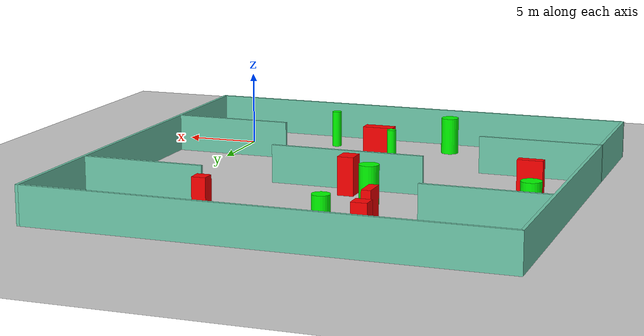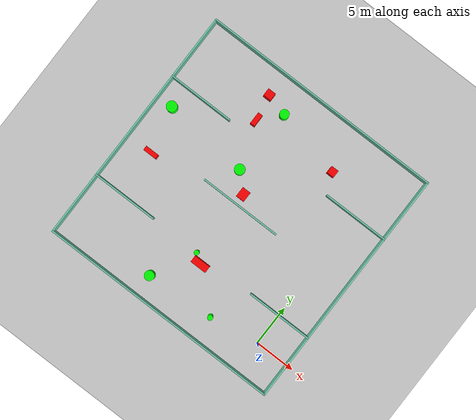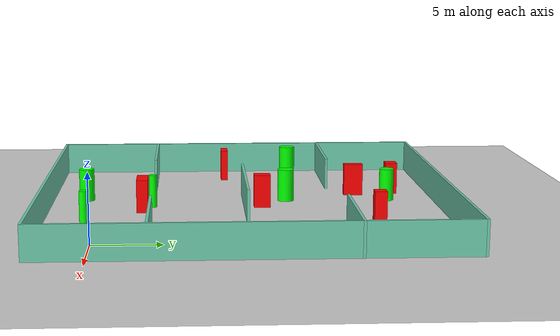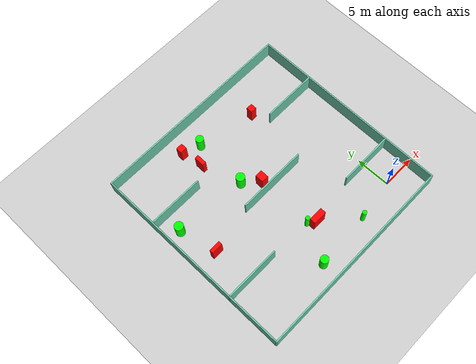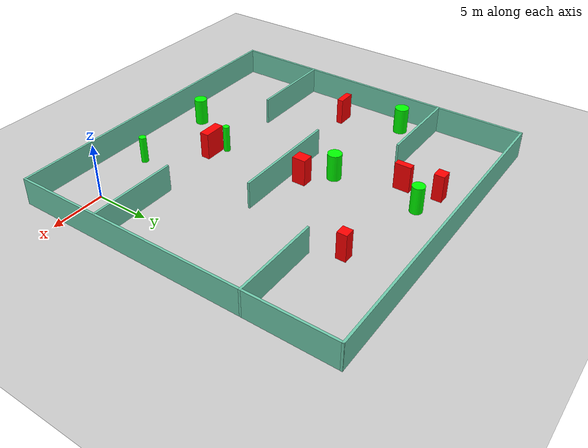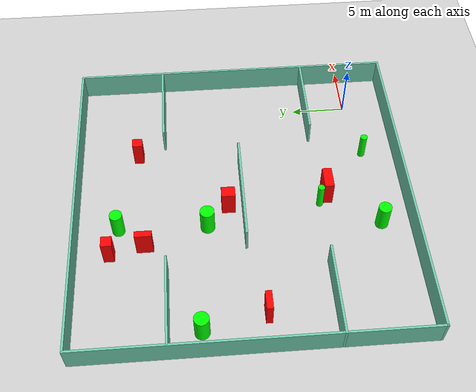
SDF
<sdf version="1.7">
 <world name="default">
  <light name="sun" type="directional">
   <pose>0 0 10 0 -0 0</pose>
   <diffuse>0.8 0.8 0.8 1</diffuse>
   <specular>0.2 0.2 0.2 1</specular>
   <attenuation>
    <range>1000</range>
    <constant>0.9</constant>
    <linear>0.01</linear>
    <quadratic>0.001</quadratic>
   </attenuation>
   <direction>-0.5 0.1 -0.9</direction>
   <spot><inner_angle>0</inner_angle><outer_angle>0</outer_angle><falloff>0</falloff></spot>
  </light>
  <model name="ground_plane">
   <static>1</static>
   <link name="link">
    <collision name="collision">
     <geometry><plane><normal>0 0 1</normal><size>100 100</size></plane></geometry>
     <surface>
      <contact><collide_bitmask>65535</collide_bitmask></contact>
      <friction><ode><mu>100</mu><mu2>50</mu2></ode></friction>
     </surface>
    </collision>
    <visual name="visual">
     <cast_shadows>0</cast_shadows>
     <geometry><plane><normal>0 0 1</normal><size>100 100</size></plane></geometry>
     <material>
      <script><uri>file://media/materials/scripts/gazebo.material</uri><name>Gazebo/Grey</name></script>
     </material>
    </visual>
   </link>
  </model>
  <gravity>0 0 -9.8</gravity>
  <magnetic_field>6e-06 2.3e-05 -4.2e-05</magnetic_field>
  <atmosphere type="adiabatic"/>
  <physics type="ode">
   <max_step_size>0.001</max_step_size>
   <real_time_factor>1</real_time_factor>
   <real_time_update_rate>1000</real_time_update_rate>
  </physics>
  <scene><ambient>0.4 0.4 0.4 1</ambient><background>0.7 0.7 0.7 1</background><shadows>1</shadows></scene>
  <spherical_coordinates>
   <surface_model>EARTH_WGS84</surface_model>
   <latitude_deg>0</latitude_deg>
   <longitude_deg>0</longitude_deg>
   <elevation>0</elevation>
   <heading_deg>0</heading_deg>
  </spherical_coordinates>
  <model name="my_base_walls">
   <link name="Wall_10">
    <collision name="Wall_10_Collision">
     <geometry><box><size>8.2 0.2 2.5</size></box></geometry>
     <pose>0 0 1.25 0 -0 0</pose>
    </collision>
    <visual name="Wall_10_Visual">
     <pose>0 0 1.25 0 -0 0</pose>
     <geometry><box><size>8.2 0.2 2.5</size></box></geometry>
     <material>
      <script><uri>file://media/materials/scripts/gazebo.material</uri><name>Gazebo/Grey</name></script>
      <ambient>0.435294 0.796078 0.67451 1</ambient>
     </material>
     <meta><layer>0</layer></meta>
    </visual>
    <pose>-11 -7 0 0 -0 0</pose>
   </link>
   <link name="Wall_12">
    <collision name="Wall_12_Collision">
     <geometry><box><size>8.2 0.2 2.5</size></box></geometry>
     <pose>0 0 1.25 0 -0 0</pose>
    </collision>
    <visual name="Wall_12_Visual">
     <pose>0 0 1.25 0 -0 0</pose>
     <geometry><box><size>8.2 0.2 2.5</size></box></geometry>
     <material>
      <script><uri>file://media/materials/scripts/gazebo.material</uri><name>Gazebo/Grey</name></script>
      <ambient>0.435294 0.796078 0.67451 1</ambient>
     </material>
     <meta><layer>0</layer></meta>
    </visual>
    <pose>-11 7 0 0 -0 0</pose>
   </link>
   <link name="Wall_14">
    <collision name="Wall_14_Collision">
     <geometry><box><size>8.2 0.2 2.5</size></box></geometry>
     <pose>0 0 1.25 0 -0 0</pose>
    </collision>
    <visual name="Wall_14_Visual">
     <pose>0 0 1.25 0 -0 0</pose>
     <geometry><box><size>8.2 0.2 2.5</size></box></geometry>
     <material>
      <script><uri>file://media/materials/scripts/gazebo.material</uri><name>Gazebo/Grey</name></script>
      <ambient>0.435294 0.796078 0.67451 1</ambient>
     </material>
     <meta><layer>0</layer></meta>
    </visual>
    <pose>11 7 0 0 -0 3.14159</pose>
   </link>
   <link name="Wall_16">
    <collision name="Wall_16_Collision">
     <geometry><box><size>10.2 0.2 2.5</size></box></geometry>
     <pose>0 0 1.25 0 -0 0</pose>
    </collision>
    <visual name="Wall_16_Visual">
     <pose>0 0 1.25 0 -0 0</pose>
     <geometry><box><size>10.2 0.2 2.5</size></box></geometry>
     <material>
      <script><uri>file://media/materials/scripts/gazebo.material</uri><name>Gazebo/Grey</name></script>
      <ambient>0.435294 0.796078 0.67451 1</ambient>
     </material>
     <meta><layer>0</layer></meta>
    </visual>
    <pose>0 0 0 0 -0 3.14159</pose>
   </link>
   <link name="Wall_2">
    <collision name="Wall_2_Collision">
     <geometry><box><size>30.2 0.2 2.5</size></box></geometry>
     <pose>0 0 1.25 0 -0 0</pose>
    </collision>
    <visual name="Wall_2_Visual">
     <pose>0 0 1.25 0 -0 0</pose>
     <geometry><box><size>30.2 0.2 2.5</size></box></geometry>
     <material>
      <script><uri>file://media/materials/scripts/gazebo.material</uri><name>Gazebo/Grey</name></script>
      <ambient>0.435294 0.796078 0.67451 1</ambient>
     </material>
     <meta><layer>0</layer></meta>
    </visual>
    <pose>0 -15 0 0 -0 3.14159</pose>
   </link>
   <link name="Wall_3">
    <collision name="Wall_3_Collision">
     <geometry><box><size>30.2 0.2 2.5</size></box></geometry>
     <pose>0 0 1.25 0 -0 0</pose>
    </collision>
    <visual name="Wall_3_Visual">
     <pose>0 0 1.25 0 -0 0</pose>
     <geometry><box><size>30.2 0.2 2.5</size></box></geometry>
     <material>
      <script><uri>file://media/materials/scripts/gazebo.material</uri><name>Gazebo/Grey</name></script>
      <ambient>0.435294 0.796078 0.67451 1</ambient>
     </material>
     <meta><layer>0</layer></meta>
    </visual>
    <pose>-15 0 0 0 -0 1.5708</pose>
   </link>
   <link name="Wall_4">
    <collision name="Wall_4_Collision">
     <geometry><box><size>30.2 0.2 2.5</size></box></geometry>
     <pose>0 0 1.25 0 -0 0</pose>
    </collision>
    <visual name="Wall_4_Visual">
     <pose>0 0 1.25 0 -0 0</pose>
     <geometry><box><size>30.2 0.2 2.5</size></box></geometry>
     <material>
      <script><uri>file://media/materials/scripts/gazebo.material</uri><name>Gazebo/Grey</name></script>
      <ambient>0.435294 0.796078 0.67451 1</ambient>
     </material>
     <meta><layer>0</layer></meta>
    </visual>
    <pose>0 15 0 0 -0 0</pose>
   </link>
   <link name="Wall_6">
    <collision name="Wall_6_Collision">
     <geometry><box><size>30.2 0.2 2.5</size></box></geometry>
     <pose>0 0 1.25 0 -0 0</pose>
    </collision>
    <visual name="Wall_6_Visual">
     <pose>0 0 1.25 0 -0 0</pose>
     <geometry><box><size>30.2 0.2 2.5</size></box></geometry>
     <material>
      <script><uri>file://media/materials/scripts/gazebo.material</uri><name>Gazebo/Grey</name></script>
      <ambient>0.435294 0.796078 0.67451 1</ambient>
     </material>
     <meta><layer>0</layer></meta>
    </visual>
    <pose>15 0 0 0 -0 1.5708</pose>
   </link>
   <link name="Wall_8">
    <collision name="Wall_8_Collision">
     <geometry><box><size>8.2 0.2 2.5</size></box></geometry>
     <pose>0 0 1.25 0 -0 0</pose>
    </collision>
    <visual name="Wall_8_Visual">
     <pose>0 0 1.25 0 -0 0</pose>
     <geometry><box><size>8.2 0.2 2.5</size></box></geometry>
     <material>
      <script><uri>file://media/materials/scripts/gazebo.material</uri><name>Gazebo/Grey</name></script>
      <ambient>0.435294 0.796078 0.67451 1</ambient>
     </material>
     <meta><layer>0</layer></meta>
    </visual>
    <pose>11 -7 0 0 -0 3.14159</pose>
   </link>
   <static>1</static>
   <pose>-11 11 0 0 -0 0</pose>
  </model>
  <model name="cylinder1">
   <static>1</static>
   <link name="link">
    <inertial>
     <mass>1</mass>
     <inertia><ixx>0.5</ixx><ixy>0</ixy><ixz>0</ixz><iyy>0.5</iyy><iyz>0</iyz><izz>1</izz></inertia>
    </inertial>
    <collision name="collision">
     <geometry><cylinder><radius>0.32413578820433453</radius><length>2.5</length></cylinder></geometry>
    </collision>
    <visual name="visual">
     <geometry><cylinder><radius>0.32413578820433453</radius><length>2.5</length></cylinder></geometry>
     <material>
      <ambient>0 1 0 1</ambient>
      <diffuse>0 1 0 1</diffuse>
      <specular>0.1 0.1 0.1 1</specular>
      <emissive>0 0 0 0</emissive>
     </material>
    </visual>
   </link>
   <pose>-6.080685786428061 -0.8819912131358087 1.25 0 0 0</pose>
  </model>
  <model name="cylinder2">
   <static>1</static>
   <link name="link">
    <inertial>
     <mass>1</mass>
     <inertia><ixx>0.5</ixx><ixy>0</ixy><ixz>0</ixz><iyy>0.5</iyy><iyz>0</iyz><izz>1</izz></inertia>
    </inertial>
    <collision name="collision">
     <geometry><cylinder><radius>0.6469020158469632</radius><length>2.5</length></cylinder></geometry>
    </collision>
    <visual name="visual">
     <geometry><cylinder><radius>0.6469020158469632</radius><length>2.5</length></cylinder></geometry>
     <material>
      <ambient>0 1 0 1</ambient>
      <diffuse>0 1 0 1</diffuse>
      <specular>0.1 0.1 0.1 1</specular>
      <emissive>0 0 0 0</emissive>
     </material>
    </visual>
   </link>
   <pose>-23.987944436922348 15.234672644844721 1.25 0 0 0</pose>
  </model>
  <model name="cylinder3">
   <static>1</static>
   <link name="link">
    <inertial>
     <mass>1</mass>
     <inertia><ixx>0.5</ixx><ixy>0</ixy><ixz>0</ixz><iyy>0.5</iyy><iyz>0</iyz><izz>1</izz></inertia>
    </inertial>
    <collision name="collision">
     <geometry><cylinder><radius>0.5650479582585851</radius><length>2.5</length></cylinder></geometry>
    </collision>
    <visual name="visual">
     <geometry><cylinder><radius>0.5650479582585851</radius><length>2.5</length></cylinder></geometry>
     <material>
      <ambient>0 1 0 1</ambient>
      <diffuse>0 1 0 1</diffuse>
      <specular>0.1 0.1 0.1 1</specular>
      <emissive>0 0 0 0</emissive>
     </material>
    </visual>
   </link>
   <pose>-13.44203260713629 22.270271892120064 1.25 0 0 0</pose>
  </model>
  <model name="cylinder4">
   <static>1</static>
   <link name="link">
    <inertial>
     <mass>1</mass>
     <inertia><ixx>0.5</ixx><ixy>0</ixy><ixz>0</ixz><iyy>0.5</iyy><iyz>0</iyz><izz>1</izz></inertia>
    </inertial>
    <collision name="collision">
     <geometry><cylinder><radius>0.5906888437726041</radius><length>2.5</length></cylinder></geometry>
    </collision>
    <visual name="visual">
     <geometry><cylinder><radius>0.5906888437726041</radius><length>2.5</length></cylinder></geometry>
     <material>
      <ambient>0 1 0 1</ambient>
      <diffuse>0 1 0 1</diffuse>
      <specular>0.1 0.1 0.1 1</specular>
      <emissive>0 0 0 0</emissive>
     </material>
    </visual>
   </link>
   <pose>-14.35817600295312 -1.3238190979024638 1.25 0 0 0</pose>
  </model>
  <model name="cylinder5">
   <static>1</static>
   <link name="link">
    <inertial>
     <mass>1</mass>
     <inertia><ixx>0.5</ixx><ixy>0</ixy><ixz>0</ixz><iyy>0.5</iyy><iyz>0</iyz><izz>1</izz></inertia>
    </inertial>
    <collision name="collision">
     <geometry><cylinder><radius>0.6405446793423184</radius><length>2.5</length></cylinder></geometry>
    </collision>
    <visual name="visual">
     <geometry><cylinder><radius>0.6405446793423184</radius><length>2.5</length></cylinder></geometry>
     <material>
      <ambient>0 1 0 1</ambient>
      <diffuse>0 1 0 1</diffuse>
      <specular>0.1 0.1 0.1 1</specular>
      <emissive>0 0 0 0</emissive>
     </material>
    </visual>
   </link>
   <pose>-13.627866321513041 14.312555599050256 1.25 0 0 0</pose>
  </model>
  <model name="cylinder6">
   <static>1</static>
   <link name="link">
    <inertial>
     <mass>1</mass>
     <inertia><ixx>0.5</ixx><ixy>0</ixy><ixz>0</ixz><iyy>0.5</iyy><iyz>0</iyz><izz>1</izz></inertia>
    </inertial>
    <collision name="collision">
     <geometry><cylinder><radius>0.301185818602902</radius><length>2.5</length></cylinder></geometry>
    </collision>
    <visual name="visual">
     <geometry><cylinder><radius>0.301185818602902</radius><length>2.5</length></cylinder></geometry>
     <material>
      <ambient>0 1 0 1</ambient>
      <diffuse>0 1 0 1</diffuse>
      <specular>0.1 0.1 0.1 1</specular>
      <emissive>0 0 0 0</emissive>
     </material>
    </visual>
   </link>
   <pose>-11.742629939540079 3.951003853853809 1.25 0 0 0</pose>
  </model>
  <model name="box1">
   <static>1</static>
   <link name="link">
    <inertial>
     <mass>1</mass>
     <inertia><ixx>0.083</ixx><ixy>0</ixy><ixz>0</ixz><iyy>0.083</iyy><iyz>0</iyz><izz>0.083</izz></inertia>
    </inertial>
    <collision name="collision">
     <geometry><box><size>1.058928773855878 1.2503235102488026 2.5</size></box></geometry>
    </collision>
    <visual name="visual">
     <geometry><box><size>1.058928773855878 1.2503235102488026 2.5</size></box></geometry>
     <material>
      <ambient>1 0 0 1</ambient>
      <diffuse>1 0 0 1</diffuse>
      <specular>0.1 0.1 0.1 1</specular>
      <emissive>0 0 0 0</emissive>
     </material>
    </visual>
    <sensor name="my_contact" type="contact">
     <contact><collision>box_collision</collision><topic>__default_topic__</topic></contact>
    </sensor>
   </link>
   <pose>-11.588025592955976 12.327519651213606 1.25 0 0 0</pose>
  </model>
  <model name="box2">
   <static>1</static>
   <link name="link">
    <inertial>
     <mass>1</mass>
     <inertia><ixx>0.083</ixx><ixy>0</ixy><ixz>0</ixz><iyy>0.083</iyy><iyz>0</iyz><izz>0.083</izz></inertia>
    </inertial>
    <collision name="collision">
     <geometry><box><size>1.6586059068490575 0.5619468784232644 2.5</size></box></geometry>
    </collision>
    <visual name="visual">
     <geometry><box><size>1.6586059068490575 0.5619468784232644 2.5</size></box></geometry>
     <material>
      <ambient>1 0 0 1</ambient>
      <diffuse>1 0 0 1</diffuse>
      <specular>0.1 0.1 0.1 1</specular>
      <emissive>0 0 0 0</emissive>
     </material>
    </visual>
    <sensor name="my_contact" type="contact">
     <contact><collision>box_collision</collision><topic>__default_topic__</topic></contact>
    </sensor>
   </link>
   <pose>-22.693068820291966 9.722432684969856 1.25 0 0 0</pose>
  </model>
  <model name="box3">
   <static>1</static>
   <link name="link">
    <inertial>
     <mass>1</mass>
     <inertia><ixx>0.083</ixx><ixy>0</ixy><ixz>0</ixz><iyy>0.083</iyy><iyz>0</iyz><izz>0.083</izz></inertia>
    </inertial>
    <collision name="collision">
     <geometry><box><size>0.991109991298952 0.9358249059864804 2.5</size></box></geometry>
    </collision>
    <visual name="visual">
     <geometry><box><size>0.991109991298952 0.9358249059864804 2.5</size></box></geometry>
     <material>
      <ambient>1 0 0 1</ambient>
      <diffuse>1 0 0 1</diffuse>
      <specular>0.1 0.1 0.1 1</specular>
      <emissive>0 0 0 0</emissive>
     </material>
    </visual>
    <sensor name="my_contact" type="contact">
     <contact><collision>box_collision</collision><topic>__default_topic__</topic></contact>
    </sensor>
   </link>
   <pose>-16.119762803415043 23.008469077686335 1.25 0 0 0</pose>
  </model>
  <model name="box4">
   <static>1</static>
   <link name="link">
    <inertial>
     <mass>1</mass>
     <inertia><ixx>0.083</ixx><ixy>0</ixy><ixz>0</ixz><iyy>0.083</iyy><iyz>0</iyz><izz>0.083</izz></inertia>
    </inertial>
    <collision name="collision">
     <geometry><box><size>0.5933367515667104 1.4943658234528294 2.5</size></box></geometry>
    </collision>
    <visual name="visual">
     <geometry><box><size>0.5933367515667104 1.4943658234528294 2.5</size></box></geometry>
     <material>
      <ambient>1 0 0 1</ambient>
      <diffuse>1 0 0 1</diffuse>
      <specular>0.1 0.1 0.1 1</specular>
      <emissive>0 0 0 0</emissive>
     </material>
    </visual>
    <sensor name="my_contact" type="contact">
     <contact><collision>box_collision</collision><topic>__default_topic__</topic></contact>
    </sensor>
   </link>
   <pose>-15.577624790433676 19.89679008048234 1.25 0 0 0</pose>
  </model>
  <model name="box5">
   <static>1</static>
   <link name="link">
    <inertial>
     <mass>1</mass>
     <inertia><ixx>0.083</ixx><ixy>0</ixy><ixz>0</ixz><iyy>0.083</iyy><iyz>0</iyz><izz>0.083</izz></inertia>
    </inertial>
    <collision name="collision">
     <geometry><box><size>0.9111715816221468 0.9050162908149061 2.5</size></box></geometry>
    </collision>
    <visual name="visual">
     <geometry><box><size>0.9111715816221468 0.9050162908149061 2.5</size></box></geometry>
     <material>
      <ambient>1 0 0 1</ambient>
      <diffuse>1 0 0 1</diffuse>
      <specular>0.1 0.1 0.1 1</specular>
      <emissive>0 0 0 0</emissive>
     </material>
    </visual>
    <sensor name="my_contact" type="contact">
     <contact><collision>box_collision</collision><topic>__default_topic__</topic></contact>
    </sensor>
   </link>
   <pose>-5.187644985073918 20.473470192903598 1.25 0 0 0</pose>
  </model>
  <model name="box6">
   <static>1</static>
   <link name="link">
    <inertial>
     <mass>1</mass>
     <inertia><ixx>0.083</ixx><ixy>0</ixy><ixz>0</ixz><iyy>0.083</iyy><iyz>0</iyz><izz>0.083</izz></inertia>
    </inertial>
    <collision name="collision">
     <geometry><box><size>2.0663486186509705 0.8559672452804181 2.5</size></box></geometry>
    </collision>
    <visual name="visual">
     <geometry><box><size>2.0663486186509705 0.8559672452804181 2.5</size></box></geometry>
     <material>
      <ambient>1 0 0 1</ambient>
      <diffuse>1 0 0 1</diffuse>
      <specular>0.1 0.1 0.1 1</specular>
      <emissive>0 0 0 0</emissive>
     </material>
    </visual>
    <sensor name="my_contact" type="contact">
     <contact><collision>box_collision</collision><topic>__default_topic__</topic></contact>
    </sensor>
   </link>
   <pose>-10.623165020628917 3.1853121203200594 1.25 0 0 0</pose>
  </model>
 </world>
</sdf>
